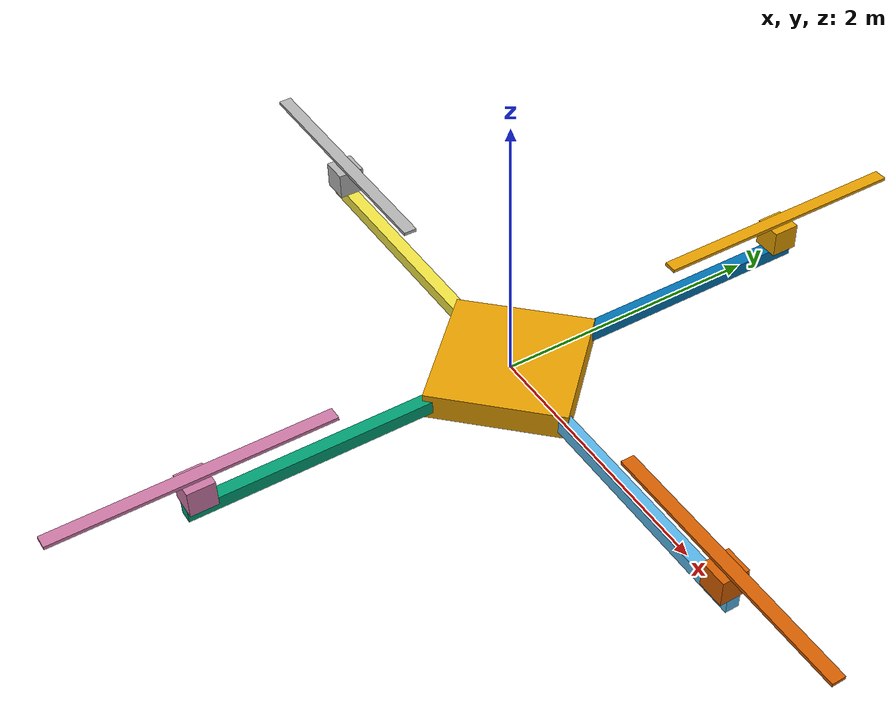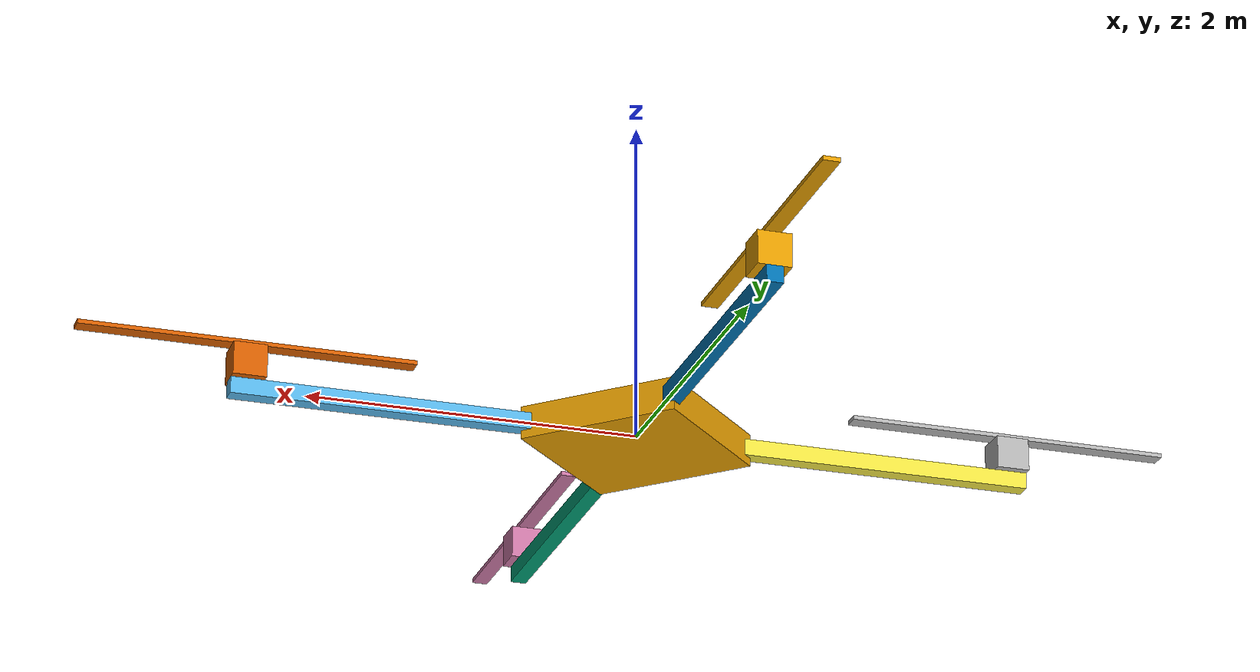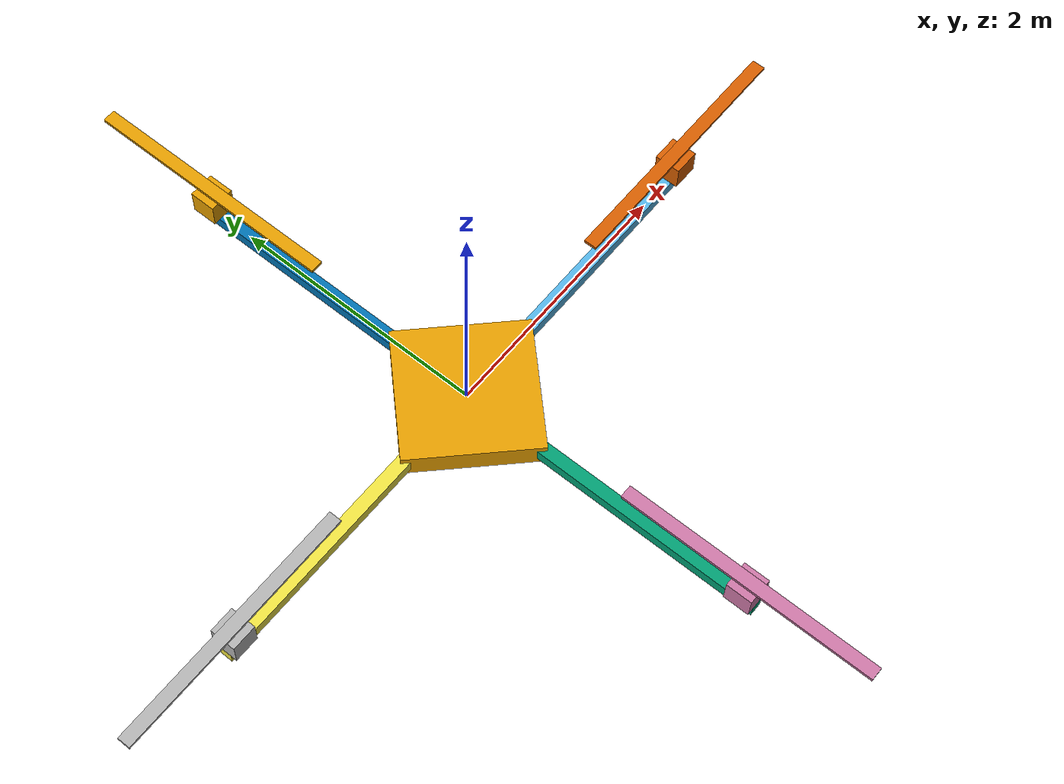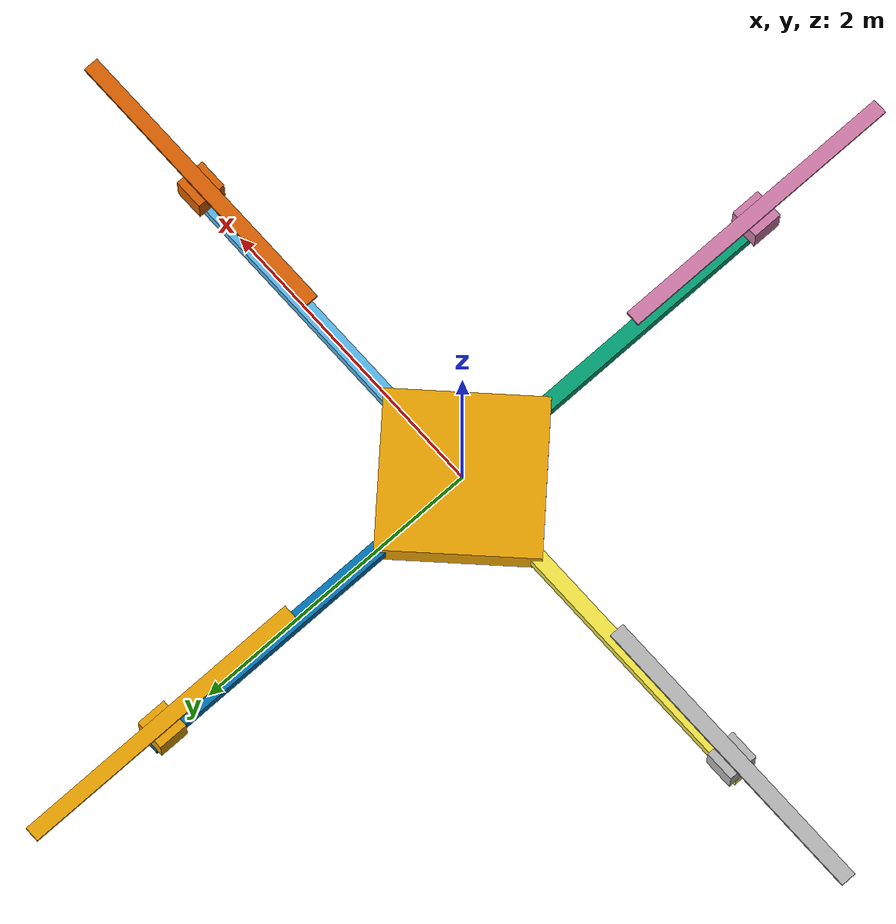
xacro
<?xml version="1.0"?>
<robot name="quadrotor" xmlns:xacro="http://www.ros.org/wiki/xacro">

<xacro:property name="source" value="$(find last_letter_2)/config/param/aircrafts/quadrotor/rigidBody.yaml" />
<xacro:property name="dictionary" value="${load_yaml(source)}"/>
<xacro:property name="body_mass" value="${dictionary['airframe/m']}"/>

<!-- body, airfoil sizes -->
<xacro:property name="body_s" value="1" />

<!-- body link parameters x, y, z, mass-->
<xacro:property name="body_x" value="${body_s}" />
<xacro:property name="body_y" value="${body_s}" />
<xacro:property name="body_z" value="${body_s/5}" />
<xacro:property name="body_m" value="${body_mass}" />

    <link name="body_FLU">
        <visual>
        <origin rpy="0 0 0.785"/>
            <geometry>
               <box size="${body_x} ${body_y} ${body_z}" />
            </geometry>
        </visual>

        <collision>
        <origin rpy="0 0 0.785"/>
            <geometry>
               <box size="${body_x} ${body_y} ${body_z}" />
            </geometry>
        </collision>

        <inertial>
        <origin rpy="0 0 0.785"/>
            <mass value="${body_m}" />
             <inertia   ixx="${1/12*body_m*(body_y*body_y+body_z*body_z)}" ixy="0" ixz="0" iyz="0"
                        iyy="${1/12*body_m*(body_x*body_x+body_z*body_z)}"
                        izz="${1/12*body_m*(body_x*body_x+body_y*body_y)}" />
        </inertial>

    </link>

---------------------------------------------------------- 4 quadrotor arms
<xacro:property name="arm_x" value="${2*body_s}" />
<xacro:property name="arm_y" value="${0.1*body_s}" />
<xacro:property name="arm_z" value="${0.1*body_s}" />
<xacro:property name="arm_m" value="${0.1*body_m}" />

    <link name="arm1">
        <visual>
        <origin xyz="${arm_x/2} 0 0"/>
            <geometry>
               <box size="${arm_x} ${arm_y} ${arm_z}" />
            </geometry>
        </visual>

        <collision>
        <origin xyz="${arm_x/2} 0 0"/>
            <geometry>
               <box size="${arm_x} ${arm_y} ${arm_z}" />
            </geometry>
        </collision>

        <inertial>
            <origin xyz="${arm_x/2} 0 0"/>
            <mass value="${arm_m}" />
            <inertia    ixx="${1/12*arm_m*(arm_y*arm_y+arm_z*arm_z)}" ixy="0" ixz="0" iyz="0"
                        iyy="${1/12*arm_m*(arm_x*arm_x+arm_z*arm_z)}"
                        izz="${1/12*arm_m*(arm_x*arm_x+arm_y*arm_y)}" />
        </inertial>
    </link>

    <joint name="body_FLU_to_arm1" type="fixed">
        <origin xyz="${0.9*body_x/2} 0 0" rpy="0 0 0"/>
        <parent link="body_FLU" />
        <child link="arm1" />
    </joint>

    <link name="arm2">
        <visual>
        <origin xyz="${arm_x/2} 0 0"/>
            <geometry>
                <box size="${arm_x} ${arm_y} ${arm_z}" />
            </geometry>
        </visual>

        <collision>
            <origin xyz="${arm_x/2} 0 0"/>
            <geometry>
                <box size="${arm_x} ${arm_y} ${arm_z}" />
            </geometry>
        </collision>

        <inertial>
            <origin xyz="${arm_x/2} 0 0"/>
            <mass value="${arm_m}" />
            <inertia    ixx="${1/12*arm_m*(arm_y*arm_y+arm_z*arm_z)}" ixy="0" ixz="0" iyz="0"
                        iyy="${1/12*arm_m*(arm_x*arm_x+arm_z*arm_z)}"
                        izz="${1/12*arm_m*(arm_x*arm_x+arm_y*arm_y)}" />
        </inertial>
    </link>

    <joint name="body_FLU_to_arm2" type="fixed">
        <origin xyz="0 -${0.9*body_y/2} 0" rpy="0 0 ${3/2*pi}"/>
        <parent link="body_FLU" />
        <child link="arm2" />
    </joint>

        <link name="arm3">
        <visual>
        <origin xyz="${arm_x/2} 0 0"/>
            <geometry>
                <box size="${arm_x} ${arm_y} ${arm_z}" />
            </geometry>
        </visual>

        <collision>
            <origin xyz="${arm_x/2} 0 0"/>
            <geometry>
                <box size="${arm_x} ${arm_y} ${arm_z}" />
            </geometry>
        </collision>

        <inertial>
            <origin xyz="${arm_x/2} 0 0"/>
            <mass value="${arm_m}" />
            <inertia    ixx="${1/12*arm_m*(arm_y*arm_y+arm_z*arm_z)}" ixy="0" ixz="0" iyz="0"
                        iyy="${1/12*arm_m*(arm_x*arm_x+arm_z*arm_z)}"
                        izz="${1/12*arm_m*(arm_x*arm_x+arm_y*arm_y)}" />
        </inertial>
    </link>

    <joint name="body_FLU_to_arm3" type="fixed">
        <origin xyz="-${0.9*body_x/2} 0 0" rpy="0 0 ${pi}"/>
        <parent link="body_FLU" />
        <child link="arm3" />
    </joint>

        <link name="arm4">
        <visual>
        <origin xyz="${arm_x/2} 0 0"/>
            <geometry>
                <box size="${arm_x} ${arm_y} ${arm_z}" />
            </geometry>
        </visual>

        <collision>
            <origin xyz="${arm_x/2} 0 0"/>
            <geometry>
                <box size="${arm_x} ${arm_y} ${arm_z}" />
            </geometry>
        </collision>

        <inertial>
            <origin xyz="${arm_x/2} 0 0"/>
            <mass value="${arm_m}" />
            <inertia    ixx="${1/12*arm_m*(arm_y*arm_y+arm_z*arm_z)}" ixy="0" ixz="0" iyz="0"
                        iyy="${1/12*arm_m*(arm_x*arm_x+arm_z*arm_z)}"
                        izz="${1/12*arm_m*(arm_x*arm_x+arm_y*arm_y)}" />
        </inertial>
    </link>

    <joint name="body_FLU_to_arm4" type="fixed">
        <origin xyz="0 ${0.9*body_y/2} 0" rpy="0 0 ${1/2*pi}"/>
        <parent link="body_FLU" />
        <child link="arm4" />
    </joint>

    ------------------------------------ motors

<xacro:property name="motor_x" value="${0.2*body_s}" />
<xacro:property name="motor_y" value="${0.2*body_s}" />
<xacro:property name="motor_z" value="${0.2*body_s}" />
<xacro:property name="motor_m" value="${0.1*body_m}" />

<!-- only motor(Number_0f_Motor) acceptable name for motors -->
     <link name="motor1">
        <visual>
        <origin xyz="${motor_x/2} 0 0" rpy="0 0 0"/>
            <geometry>
                <box size="${motor_x} ${motor_y} ${motor_z}" />
            </geometry>
        </visual>

        <collision>
            <origin xyz="${motor_x/2} 0 0" rpy="0 0 0"/>
            <geometry>
                <box size="${motor_x} ${motor_y} ${motor_z}" />
            </geometry>
        </collision>

        <inertial>
            <origin xyz="${motor_x/2} 0 0" rpy="0 0 0"/>
            <mass value="${motor_m}" />
            <inertia    ixx="${1/12*motor_m*(motor_y*motor_y+motor_z*motor_z)}" ixy="0" ixz="0" iyz="0"
                        iyy="${1/12*motor_m*(motor_x*motor_x+motor_z*motor_z)}"
                        izz="${1/12*motor_m*(motor_x*motor_x+motor_y*motor_y)}" />
        </inertial>
    </link>

    <joint name="arm1_to_motor1" type="revolute">
        <origin xyz="${arm_x-motor_x/2} 0 ${arm_z/2}" rpy="0 -1.57 0"/>
        <parent link="arm1" />
        <child link="motor1" />
        <limit effort="1000.0" lower="-0.000872665" upper="0.000872665" velocity="0.5"/>
    </joint>

         <link name="motor2">
        <visual>
        <origin xyz="${motor_x/2} 0 0"/>
            <geometry>
                <box size="${motor_x} ${motor_y} ${motor_z}" />
            </geometry>
        </visual>

        <collision>
            <origin xyz="${motor_x/2} 0 0"/>
            <geometry>
                <box size="${motor_x} ${motor_y} ${motor_z}" />
            </geometry>
        </collision>

        <inertial>
            <origin xyz="${motor_x/2} 0 0"/>
            <mass value="${motor_m}" />
            <inertia    ixx="${1/12*motor_m*(motor_y*motor_y+motor_z*motor_z)}" ixy="0" ixz="0" iyz="0"
                        iyy="${1/12*motor_m*(motor_x*motor_x+motor_z*motor_z)}"
                        izz="${1/12*motor_m*(motor_x*motor_x+motor_y*motor_y)}" />
        </inertial>
    </link>

    <joint name="arm2_to_motor2" type="revolute">
        <origin xyz="${arm_x-motor_x/2} 0 ${arm_z/2}" rpy="0 -1.57 0"/>
        <parent link="arm2" />
        <child link="motor2" />
        <limit effort="1000.0" lower="-0.000872665" upper="0.000872665" velocity="0.5"/>
    </joint>

         <link name="motor3">
        <visual>
        <origin xyz="${motor_x/2} 0 0"/>
            <geometry>
                <box size="${motor_x} ${motor_y} ${motor_z}" />
            </geometry>
        </visual>

        <collision>
            <origin xyz="${motor_x/2} 0 0"/>
            <geometry>
                <box size="${motor_x} ${motor_y} ${motor_z}" />
            </geometry>
        </collision>

        <inertial>
            <origin xyz="${motor_x/2} 0 0"/>
            <mass value="${motor_m}" />
            <inertia    ixx="${1/12*motor_m*(motor_y*motor_y+motor_z*motor_z)}" ixy="0" ixz="0" iyz="0"
                        iyy="${1/12*motor_m*(motor_x*motor_x+motor_z*motor_z)}"
                        izz="${1/12*motor_m*(motor_x*motor_x+motor_y*motor_y)}" />
        </inertial>
    </link>

    <joint name="arm3_to_motor3" type="revolute">
        <origin xyz="${arm_x-motor_x/2} 0 ${arm_z/2}" rpy="0 -1.57 0"/>
        <parent link="arm3" />
        <child link="motor3" />
        <limit effort="1000.0" lower="-0.000872665" upper="0.000872665" velocity="0.5"/>
    </joint>

    <link name="motor4">
        <visual>
        <origin xyz="${motor_x/2} 0 0"/>
            <geometry>
                <box size="${motor_x} ${motor_y} ${motor_z}" />
            </geometry>
        </visual>

        <collision>
            <origin xyz="${motor_x/2} 0 0"/>
            <geometry>
                <box size="${motor_x} ${motor_y} ${motor_z}" />
            </geometry>
        </collision>

        <inertial>
            <origin xyz="${motor_x/2} 0 0"/>
            <mass value="${motor_m}" />
            <inertia    ixx="${1/12*motor_m*(motor_y*motor_y+motor_z*motor_z)}" ixy="0" ixz="0" iyz="0"
                        iyy="${1/12*motor_m*(motor_x*motor_x+motor_z*motor_z)}"
                        izz="${1/12*motor_m*(motor_x*motor_x+motor_y*motor_y)}" />
        </inertial>
    </link>

    <joint name="arm4_to_motor4" type="revolute">
        <origin xyz="${arm_x-motor_x/2} 0 ${arm_z/2}" rpy="0 -1.57 0"/>
        <parent link="arm4" />
        <child link="motor4" />
        <limit effort="1000.0" lower="-0.000872665" upper="0.000872665" velocity="0.5"/>
    </joint>

 ------------------------------------- propellers
<!-- arm link -->
<xacro:property name="axle_m" value="${body_m/20}" />
<xacro:property name="axle_r" value="${body_s/40}" />
<xacro:property name="axle_h" value="${body_s/40}" />

    <link name="axle1">
        <visual>
            <origin xyz="${axle_h/2} 0 0" rpy="0 ${pi/2} 0"/>
            <geometry>
                <cylinder radius="${axle_r}" length="${axle_h}" />
            </geometry>
        </visual>

        <collision>
            <origin xyz="${axle_h/2} 0 0" rpy="0 ${pi/2} 0"/>
            <geometry>
                <cylinder radius="${axle_r}" length="${axle_h}" />
            </geometry>
        </collision>

        <inertial>
            <origin xyz="${axle_h/2} 0 0" />
            <mass value="${axle_m}" />
            <inertia    ixx="${1/12*axle_m*axle_h*axle_h+1/4*axle_m*axle_r*axle_r}" ixy="0" ixz="0" iyz="0"
                        iyy="${1/12*axle_m*axle_h*axle_h+1/4*axle_m*axle_r*axle_r}"
                        izz="${1/2*axle_m*axle_r*axle_r}" />
        </inertial>
    </link>

    <joint name="motor1_to_axle1" type="continuous">
        <origin xyz="${motor_x} 0 0" rpy="0 0 0"/>
        <axis xyz="1 0 0" />
        <parent link="motor1" />
        <child link="axle1" />
    </joint>

        <link name="axle2">
        <visual>
            <origin xyz="${axle_h/2} 0 0" rpy="0 ${pi/2} 0"/>
            <geometry>
                <cylinder radius="${axle_r}" length="${axle_h}" />
            </geometry>
        </visual>

        <collision>
            <origin xyz="${axle_h/2} 0 0" rpy="0 ${pi/2} 0"/>
            <geometry>
                <cylinder radius="${axle_r}" length="${axle_h}" />
            </geometry>
        </collision>

        <inertial>
            <origin xyz="${axle_h/2} 0 0" />
            <mass value="${axle_m}" />
            <inertia    ixx="${1/12*axle_m*axle_h*axle_h+1/4*axle_m*axle_r*axle_r}" ixy="0" ixz="0" iyz="0"
                        iyy="${1/12*axle_m*axle_h*axle_h+1/4*axle_m*axle_r*axle_r}"
                        izz="${1/2*axle_m*axle_r*axle_r}" />
        </inertial>
    </link>

    <joint name="motor2_to_axle2" type="continuous">
        <origin xyz="${motor_x} 0 0" rpy="0 0 0"/>
        <axis xyz="1 0 0" />
        <parent link="motor2" />
        <child link="axle2" />
    </joint>

        <link name="axle3">
        <visual>
            <origin xyz="${axle_h/2} 0 0" rpy="0 ${pi/2} 0"/>
            <geometry>
                <cylinder radius="${axle_r}" length="${axle_h}" />
            </geometry>
        </visual>

        <collision>
            <origin xyz="${axle_h/2} 0 0" rpy="0 ${pi/2} 0"/>
            <geometry>
                <cylinder radius="${axle_r}" length="${axle_h}" />
            </geometry>
        </collision>

        <inertial>
            <origin xyz="${axle_h/2} 0 0" />
            <mass value="${axle_m}" />
            <inertia    ixx="${1/12*axle_m*axle_h*axle_h+1/4*axle_m*axle_r*axle_r}" ixy="0" ixz="0" iyz="0"
                        iyy="${1/12*axle_m*axle_h*axle_h+1/4*axle_m*axle_r*axle_r}"
                        izz="${1/2*axle_m*axle_r*axle_r}" />
        </inertial>
    </link>

    <joint name="motor3_to_axle3" type="continuous">
        <origin xyz="${motor_x} 0 0" rpy="0 0 0"/>
        <axis xyz="1 0 0" />
        <parent link="motor3" />
        <child link="axle3" />
    </joint>

        <link name="axle4">
        <visual>
            <origin xyz="${axle_h/2} 0 0" rpy="0 ${pi/2} 0"/>
            <geometry>
                <cylinder radius="${axle_r}" length="${axle_h}" />
            </geometry>
        </visual>

        <collision>
            <origin xyz="${axle_h/2} 0 0" rpy="0 ${pi/2} 0"/>
            <geometry>
                <cylinder radius="${axle_r}" length="${axle_h}" />
            </geometry>
        </collision>

        <inertial>
            <origin xyz="${axle_h/2} 0 0" />
            <mass value="${axle_m}" />
            <inertia    ixx="${1/12*axle_m*axle_h*axle_h+1/4*axle_m*axle_r*axle_r}" ixy="0" ixz="0" iyz="0"
                        iyy="${1/12*axle_m*axle_h*axle_h+1/4*axle_m*axle_r*axle_r}"
                        izz="${1/2*axle_m*axle_r*axle_r}" />
        </inertial>
    </link>

    <joint name="motor4_to_axle4" type="continuous">
        <origin xyz="${motor_x} 0 0" rpy="0 0 0"/>
        <axis xyz="1 0 0" />
        <parent link="motor4" />
        <child link="axle4" />
    </joint>

<!-- propeller links -->
<xacro:property name="propeller_m" value="${body_m/20}" />
<xacro:property name="propeller_x" value="${2*body_s}" />
<xacro:property name="propeller_y" value="${body_s/10}" />
<xacro:property name="propeller_z" value="${body_s/40}" />

   <link name="prop1">
        <visual>
            <origin xyz="0 0 0" rpy="0 ${pi/2} 0"/>
            <geometry>
                <box size="${propeller_x} ${propeller_y} ${propeller_z}" />
            </geometry>
        </visual>

        <collision>
            <origin xyz="0 0 0" rpy="0 ${pi/2} 0"/>
            <geometry>
                <box size="${propeller_x} ${propeller_y} ${propeller_z}" />
            </geometry>
        </collision>

        <inertial>
            <origin xyz="0 0 0" rpy="0 ${pi/2} 0"/>
            <mass value="${propeller_m}" />
            <inertia    ixx="${1/12*propeller_m*(propeller_y*propeller_y+propeller_z*propeller_z)}" ixy="0" ixz="0" iyz="0"
                        iyy="${1/12*propeller_m*(propeller_x*propeller_x+propeller_z*propeller_z)}"
                        izz="${1/12*propeller_m*(propeller_x*propeller_x+propeller_y*propeller_y)}" />
        </inertial>
    </link>

    <joint name="axle1_to_prop1" type="fixed">
        <origin xyz="${axle_h} 0 0" rpy="0 0 0"/>
        <axis xyz="1 0 0" />
        <parent link="axle1" />
        <child link="prop1" />
    </joint>

       <link name="prop2">
        <visual>
            <origin xyz="0 0 0" rpy="0 ${pi/2} 0"/>
            <geometry>
                <box size="${propeller_x} ${propeller_y} ${propeller_z}" />
            </geometry>
        </visual>

        <collision>
            <origin xyz="0 0 0" rpy="0 ${pi/2} 0"/>
            <geometry>
                <box size="${propeller_x} ${propeller_y} ${propeller_z}" />
            </geometry>
        </collision>

        <inertial>
            <origin xyz="0 0 0" rpy="0 ${pi/2} 0"/>
            <mass value="${propeller_m}" />
            <inertia    ixx="${1/12*propeller_m*(propeller_y*propeller_y+propeller_z*propeller_z)}" ixy="0" ixz="0" iyz="0"
                        iyy="${1/12*propeller_m*(propeller_x*propeller_x+propeller_z*propeller_z)}"
                        izz="${1/12*propeller_m*(propeller_x*propeller_x+propeller_y*propeller_y)}" />
        </inertial>
    </link>

    <joint name="axle2_to_prop2" type="fixed">
        <origin xyz="${axle_h} 0 0" rpy="0 0 0"/>
        <axis xyz="1 0 0" />
        <parent link="axle2" />
        <child link="prop2" />
    </joint>

       <link name="prop3">
        <visual>
            <origin xyz="0 0 0" rpy="0 ${pi/2} 0"/>
            <geometry>
                <box size="${propeller_x} ${propeller_y} ${propeller_z}" />
            </geometry>
        </visual>

        <collision>
            <origin xyz="0 0 0" rpy="0 ${pi/2} 0"/>
            <geometry>
                <box size="${propeller_x} ${propeller_y} ${propeller_z}" />
            </geometry>
        </collision>

        <inertial>
            <origin xyz="0 0 0" rpy="0 ${pi/2} 0"/>
            <mass value="${propeller_m}" />
            <inertia    ixx="${1/12*propeller_m*(propeller_y*propeller_y+propeller_z*propeller_z)}" ixy="0" ixz="0" iyz="0"
                        iyy="${1/12*propeller_m*(propeller_x*propeller_x+propeller_z*propeller_z)}"
                        izz="${1/12*propeller_m*(propeller_x*propeller_x+propeller_y*propeller_y)}" />
        </inertial>
    </link>

    <joint name="axle3_to_prop3" type="fixed">
        <origin xyz="${axle_h} 0 0" rpy="0 0 0"/>
        <axis xyz="1 0 0" />
        <parent link="axle3" />
        <child link="prop3" />
    </joint>

    <link name="propeller4">
        <visual>
        <origin xyz="0 0 0" rpy="0 ${pi/2} 0"/>
            <geometry>
                <box size="${propeller_x} ${propeller_y} ${propeller_z}" />
            </geometry>
        </visual>

        <collision>
            <origin xyz="0 0 0" rpy="0 ${pi/2} 0"/>
            <geometry>
                <box size="${propeller_x} ${propeller_y} ${propeller_z}" />
            </geometry>
        </collision>

        <inertial>
            <origin xyz="0 0 0" rpy="0 ${pi/2} 0"/>
            <mass value="${propeller_m}" />
            <inertia    ixx="${1/12*propeller_m*(propeller_y*propeller_y+propeller_z*propeller_z)}" ixy="0" ixz="0" iyz="0"
                        iyy="${1/12*propeller_m*(propeller_x*propeller_x+propeller_z*propeller_z)}"
                        izz="${1/12*propeller_m*(propeller_x*propeller_x+propeller_y*propeller_y)}" />
        </inertial>
    </link>

    <joint name="axle4_to_prop4" type="fixed">
        <origin xyz="${axle_h} 0 0" rpy="0 0 0"/>
        <axis xyz="1 0 0" />
        <parent link="axle4" />
        <child link="propeller4" />
    </joint>

    <!-- model plugins -->
    <gazebo>
    <plugin name="model_plugin" filename="libmodel_plugin.so"/>
    <plugin name="joint_state_publisher" filename="libgazebo_ros_joint_state_publisher.so">
        <jointName>arm1_to_motor1, arm2_to_motor2, arm3_to_motor3,arm4_to_motor4,motor1_to_axle1,motor2_to_axle2,motor3_to_axle3,motor4_to_axle4 </jointName>
        <robotNamespace>last_letter_2</robotNamespace>
        <updateRate>0</updateRate>
    </plugin>
  </gazebo>
</robot>
